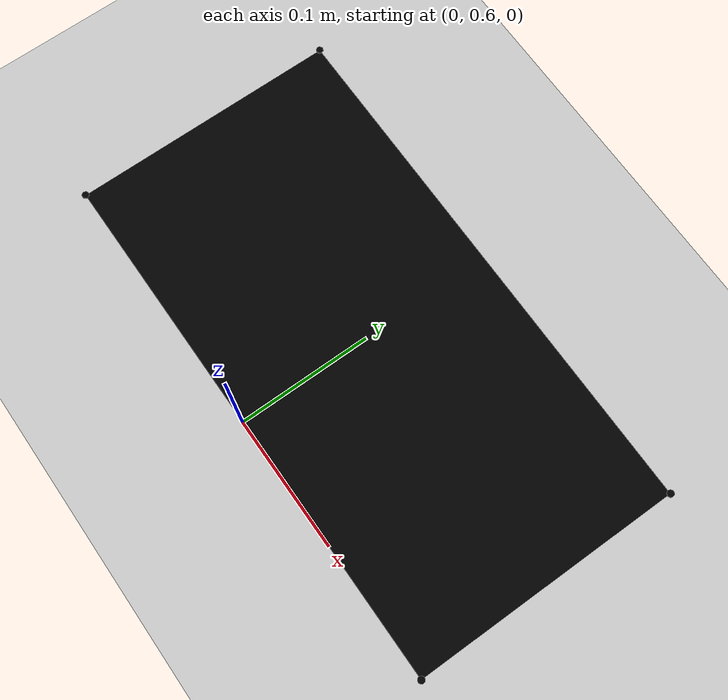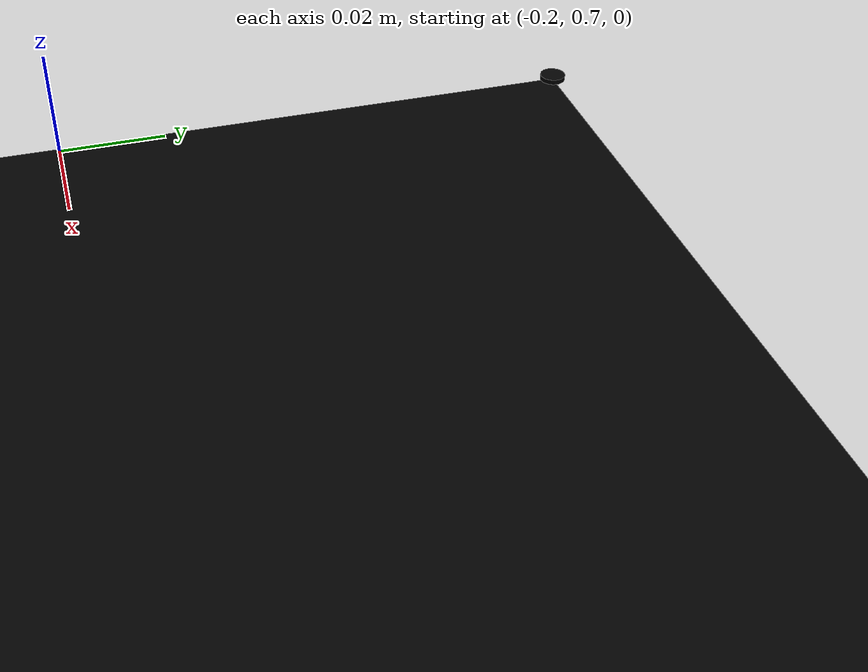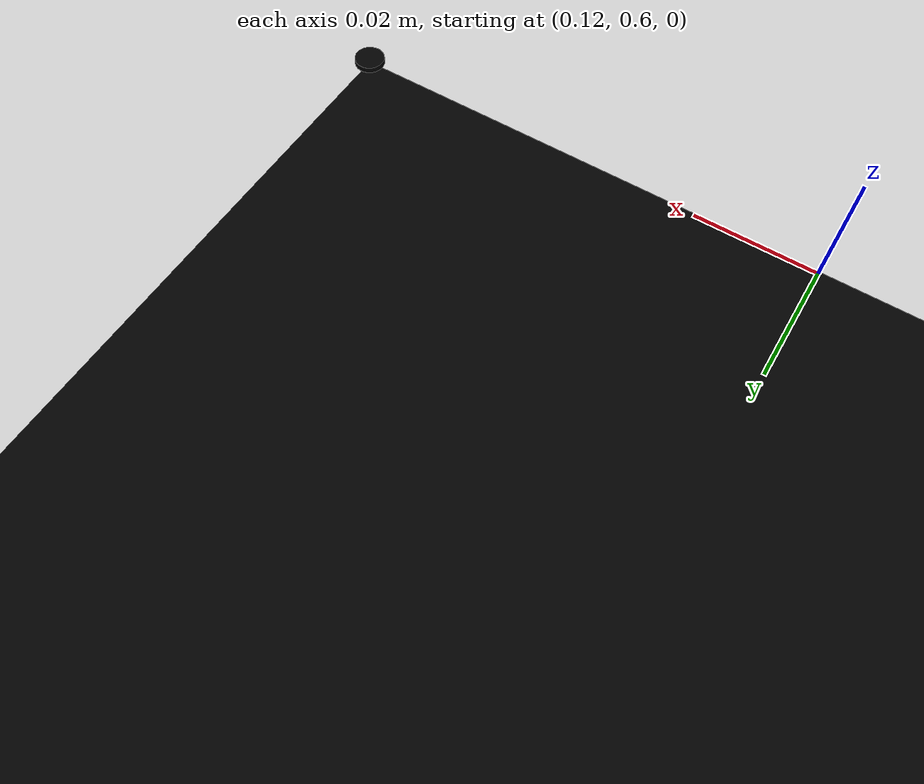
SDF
<sdf version="1.6">
 <world name="default">
  <scene>
   <sky><clouds><speed>12</speed></clouds></sky>
   <ambient>1.0 1.0 1.0 1.0</ambient>
   <shadows>false</shadows>
  </scene>
  <include><uri>model://ground_plane</uri></include>
  <include><uri>model://sun</uri></include>
  <include>
   <name>camera_homography_shape</name>
   <uri>model://urdf/models/camera_homography_shape</uri>
   <pose>0 0.70 0.0 0 0 0</pose>
  </include>
  <include>
   <name>small_dot 0</name>
   <uri>model://urdf/models/small_dot</uri>
   <pose>-0.20 0.6 0.001 0 0 0</pose>
  </include>
  <include>
   <name>small_dot 1</name>
   <uri>model://urdf/models/small_dot</uri>
   <pose>0.20 0.6 0.001 0 0 0</pose>
  </include>
  <include>
   <name>small_dot 2</name>
   <uri>model://urdf/models/small_dot</uri>
   <pose>-0.20 0.8 0.001 0 0 0</pose>
  </include>
  <include>
   <name>small_dot 3</name>
   <uri>model://urdf/models/small_dot</uri>
   <pose>0.20 0.8 0.001 0 0 0</pose>
  </include>
 </world>
</sdf>

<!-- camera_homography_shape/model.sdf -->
<sdf version="1.6">
  <model name="camera_homography_shape">
    <static>true</static>

    <link name="link">
      <collision name="collision">
        <geometry>
          <mesh>
            <uri>model://autocone_description/urdf/models/camera_homography_shape/camera_homography_shape.dae</uri>
          </mesh>
        </geometry>
        <surface>
            <contact>
              <collide_without_contact>true</collide_without_contact>
            </contact>
          </surface>

      </collision>

      <visual name="visual">
        <cast_shadows>true</cast_shadows>
        <material>
          <ambient>1 1 1 1</ambient>
          <diffuse>0 0 0 1</diffuse>
          <specular>0 0 0.1 1</specular>
          <emissive>0 0 0 0</emissive>
        </material>
        <geometry>
          <mesh>
            <uri>model://autocone_description/urdf/models/camera_homography_shape/camera_homography_shape.dae</uri>
          </mesh>
        </geometry>
      </visual>
    </link>
  </model>
</sdf>

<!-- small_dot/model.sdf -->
<sdf version="1.6">
  <model name="small_dot">
    <static>true</static>

    <link name="link">
      <collision name="collision">
        <geometry>
          <mesh>
            <uri>model://autocone_description/urdf/models/small_dot/small_dot.dae</uri>
          </mesh>
        </geometry>
        <surface>
            <contact>
              <collide_without_contact>true</collide_without_contact>
            </contact>
          </surface>

      </collision>

      <visual name="visual">
        <cast_shadows>true</cast_shadows>
        <material>
          <ambient>0 0 0 1</ambient>
          <diffuse>0 0 0 1</diffuse>
          <specular>0 0 0.1 1</specular>
          <emissive>1 0 0 0</emissive>
        </material>
        <geometry>
          <mesh>
            <uri>model://autocone_description/urdf/models/small_dot/small_dot.dae</uri>
          </mesh>
        </geometry>
      </visual>
    </link>
  </model>
</sdf>
